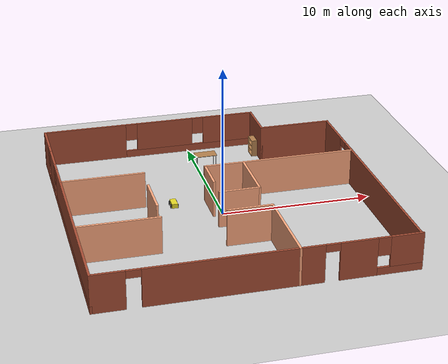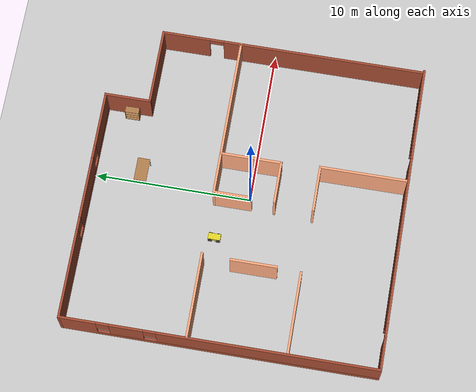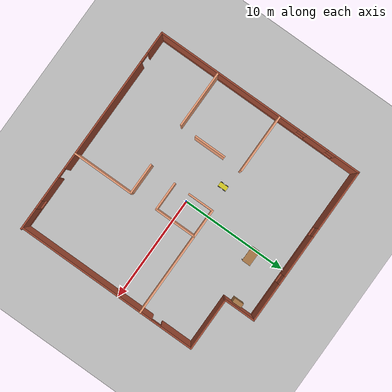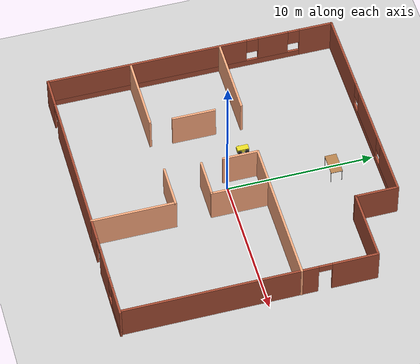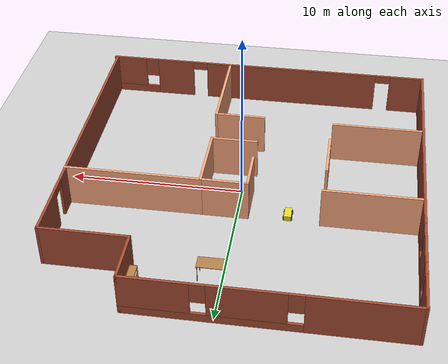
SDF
<sdf version="1.6">
 <world name="default">
  <model name="ground_plane">
   <static>1</static>
   <link name="link">
    <collision name="collision">
     <geometry><plane><normal>0 0 1</normal><size>100 100</size></plane></geometry>
     <surface><friction><ode><mu>100</mu><mu2>50</mu2></ode></friction></surface>
    </collision>
    <visual name="visual">
     <cast_shadows>0</cast_shadows>
     <geometry><plane><normal>0 0 1</normal><size>100 100</size></plane></geometry>
     <material>
      <script><uri>file://media/materials/scripts/gazebo.material</uri><name>Gazebo/Grey</name></script>
     </material>
    </visual>
   </link>
  </model>
  <model name="Workshop_Office">
   <pose>-0.23673 0.237179 0 0 -0 0</pose>
   <link name="Wall_2">
    <pose>-9.90477 0.002703 0 0 0 -1.5708</pose>
    <visual name="Wall_2_Visual_0">
     <pose>-8.81158 0 1.25 0 -0 0</pose>
     <geometry><box><size>2.37684 0.15 2.5</size></box></geometry>
     <material>
      <script><uri>file://media/materials/scripts/gazebo.material</uri><name>Gazebo/Bricks</name></script>
      <ambient>1 1 1 1</ambient>
     </material>
     <meta><layer>0</layer></meta>
    </visual>
    <collision name="Wall_2_Collision_0">
     <geometry><box><size>2.37684 0.15 2.5</size></box></geometry>
     <pose>-8.81158 0 1.25 0 -0 0</pose>
    </collision>
    <visual name="Wall_2_Visual_1">
     <pose>1.18842 0 0.25 0 -0 0</pose>
     <geometry><box><size>17.6232 0.15 0.5</size></box></geometry>
     <material>
      <script><uri>file://media/materials/scripts/gazebo.material</uri><name>Gazebo/Bricks</name></script>
      <ambient>1 1 1 1</ambient>
     </material>
     <meta><layer>0</layer></meta>
    </visual>
    <collision name="Wall_2_Collision_1">
     <geometry><box><size>17.6232 0.15 0.5</size></box></geometry>
     <pose>1.18842 0 0.25 0 -0 0</pose>
    </collision>
    <visual name="Wall_2_Visual_2">
     <pose>-5.76229 0 1.5 0 -0 0</pose>
     <geometry><box><size>2.12174 0.15 2</size></box></geometry>
     <material>
      <script><uri>file://media/materials/scripts/gazebo.material</uri><name>Gazebo/Bricks</name></script>
      <ambient>1 1 1 1</ambient>
     </material>
     <meta><layer>0</layer></meta>
    </visual>
    <collision name="Wall_2_Collision_2">
     <geometry><box><size>2.12174 0.15 2</size></box></geometry>
     <pose>-5.76229 0 1.5 0 -0 0</pose>
    </collision>
    <visual name="Wall_2_Visual_3">
     <pose>3.04929 0 1.5 0 -0 0</pose>
     <geometry><box><size>13.9014 0.15 2</size></box></geometry>
     <material>
      <script><uri>file://media/materials/scripts/gazebo.material</uri><name>Gazebo/Bricks</name></script>
      <ambient>1 1 1 1</ambient>
     </material>
     <meta><layer>0</layer></meta>
    </visual>
    <collision name="Wall_2_Collision_3">
     <geometry><box><size>13.9014 0.15 2</size></box></geometry>
     <pose>3.04929 0 1.5 0 -0 0</pose>
    </collision>
    <visual name="Wall_2_Visual_4">
     <pose>-7.22316 0 1.9 0 -0 0</pose>
     <geometry><box><size>0.8 0.15 1.2</size></box></geometry>
     <material>
      <script><uri>file://media/materials/scripts/gazebo.material</uri><name>Gazebo/Bricks</name></script>
      <ambient>1 1 1 1</ambient>
     </material>
     <meta><layer>0</layer></meta>
    </visual>
    <collision name="Wall_2_Collision_4">
     <geometry><box><size>0.8 0.15 1.2</size></box></geometry>
     <pose>-7.22316 0 1.9 0 -0 0</pose>
    </collision>
    <visual name="Wall_2_Visual_5">
     <pose>-4.30143 0 1.9 0 -0 0</pose>
     <geometry><box><size>0.8 0.15 1.2</size></box></geometry>
     <material>
      <script><uri>file://media/materials/scripts/gazebo.material</uri><name>Gazebo/Bricks</name></script>
      <ambient>1 1 1 1</ambient>
     </material>
     <meta><layer>0</layer></meta>
    </visual>
    <collision name="Wall_2_Collision_5">
     <geometry><box><size>0.8 0.15 1.2</size></box></geometry>
     <pose>-4.30143 0 1.9 0 -0 0</pose>
    </collision>
   </link>
   <link name="Wall_3">
    <pose>0 -9.9223 0 0 -0 0</pose>
    <visual name="Wall_3_Visual_0">
     <pose>-8.93023 0 1.25 0 -0 0</pose>
     <geometry><box><size>2.09908 0.15 2.5</size></box></geometry>
     <material>
      <script><uri>file://media/materials/scripts/gazebo.material</uri><name>Gazebo/Bricks</name></script>
      <ambient>1 1 1 1</ambient>
     </material>
     <meta><layer>0</layer></meta>
    </visual>
    <collision name="Wall_3_Collision_0">
     <geometry><box><size>2.09908 0.15 2.5</size></box></geometry>
     <pose>-8.93023 0 1.25 0 -0 0</pose>
    </collision>
    <visual name="Wall_3_Visual_1">
     <pose>-1.56113 0 1.25 0 -0 0</pose>
     <geometry><box><size>10.8391 0.15 2.5</size></box></geometry>
     <material>
      <script><uri>file://media/materials/scripts/gazebo.material</uri><name>Gazebo/Bricks</name></script>
      <ambient>1 1 1 1</ambient>
     </material>
     <meta><layer>0</layer></meta>
    </visual>
    <collision name="Wall_3_Collision_1">
     <geometry><box><size>10.8391 0.15 2.5</size></box></geometry>
     <pose>-1.56113 0 1.25 0 -0 0</pose>
    </collision>
    <visual name="Wall_3_Visual_2">
     <pose>5.92474 0 1.25 0 -0 0</pose>
     <geometry><box><size>2.33261 0.15 2.5</size></box></geometry>
     <material>
      <script><uri>file://media/materials/scripts/gazebo.material</uri><name>Gazebo/Bricks</name></script>
      <ambient>1 1 1 1</ambient>
     </material>
     <meta><layer>0</layer></meta>
    </visual>
    <collision name="Wall_3_Collision_2">
     <geometry><box><size>2.33261 0.15 2.5</size></box></geometry>
     <pose>5.92474 0 1.25 0 -0 0</pose>
    </collision>
    <visual name="Wall_3_Visual_3">
     <pose>8.53541 0 0.25 0 -0 0</pose>
     <geometry><box><size>2.88873 0.15 0.5</size></box></geometry>
     <material>
      <script><uri>file://media/materials/scripts/gazebo.material</uri><name>Gazebo/Bricks</name></script>
      <ambient>1 1 1 1</ambient>
     </material>
     <meta><layer>0</layer></meta>
    </visual>
    <collision name="Wall_3_Collision_3">
     <geometry><box><size>2.88873 0.15 0.5</size></box></geometry>
     <pose>8.53541 0 0.25 0 -0 0</pose>
    </collision>
    <visual name="Wall_3_Visual_4">
     <pose>8.93541 0 1.5 0 -0 0</pose>
     <geometry><box><size>2.08873 0.15 2</size></box></geometry>
     <material>
      <script><uri>file://media/materials/scripts/gazebo.material</uri><name>Gazebo/Bricks</name></script>
      <ambient>1 1 1 1</ambient>
     </material>
     <meta><layer>0</layer></meta>
    </visual>
    <collision name="Wall_3_Collision_4">
     <geometry><box><size>2.08873 0.15 2</size></box></geometry>
     <pose>8.93541 0 1.5 0 -0 0</pose>
    </collision>
    <visual name="Wall_3_Visual_5">
     <pose>7.49104 0 1.9 0 -0 0</pose>
     <geometry><box><size>0.8 0.15 1.2</size></box></geometry>
     <material>
      <script><uri>file://media/materials/scripts/gazebo.material</uri><name>Gazebo/Bricks</name></script>
      <ambient>1 1 1 1</ambient>
     </material>
     <meta><layer>0</layer></meta>
    </visual>
    <collision name="Wall_3_Collision_5">
     <geometry><box><size>0.8 0.15 1.2</size></box></geometry>
     <pose>7.49104 0 1.9 0 -0 0</pose>
    </collision>
    <visual name="Wall_3_Visual_6">
     <pose>-7.4307 0 2.25 0 -0 0</pose>
     <geometry><box><size>0.9 0.15 0.5</size></box></geometry>
     <material>
      <script><uri>file://media/materials/scripts/gazebo.material</uri><name>Gazebo/Bricks</name></script>
      <ambient>1 1 1 1</ambient>
     </material>
     <meta><layer>0</layer></meta>
    </visual>
    <collision name="Wall_3_Collision_6">
     <geometry><box><size>0.9 0.15 0.5</size></box></geometry>
     <pose>-7.4307 0 2.25 0 -0 0</pose>
    </collision>
    <visual name="Wall_3_Visual_7">
     <pose>4.30844 0 2.25 0 -0 0</pose>
     <geometry><box><size>0.9 0.15 0.5</size></box></geometry>
     <material>
      <script><uri>file://media/materials/scripts/gazebo.material</uri><name>Gazebo/Bricks</name></script>
      <ambient>1 1 1 1</ambient>
     </material>
     <meta><layer>0</layer></meta>
    </visual>
    <collision name="Wall_3_Collision_7">
     <geometry><box><size>0.9 0.15 0.5</size></box></geometry>
     <pose>4.30844 0 2.25 0 -0 0</pose>
    </collision>
   </link>
   <link name="Wall_35">
    <collision name="Wall_35_Collision">
     <geometry><box><size>5.25 0.15 2.5</size></box></geometry>
     <pose>0 0 1.25 0 -0 0</pose>
    </collision>
    <visual name="Wall_35_Visual">
     <pose>0 0 1.25 0 -0 0</pose>
     <geometry><box><size>5.25 0.15 2.5</size></box></geometry>
     <material>
      <script><uri>file://media/materials/scripts/gazebo.material</uri><name>Gazebo/Grey</name></script>
      <ambient>1 0.666667 0.498039 1</ambient>
     </material>
     <meta><layer>0</layer></meta>
    </visual>
    <pose>-7.22637 -4.21655 0 0 -0 0</pose>
   </link>
   <link name="Wall_38">
    <collision name="Wall_38_Collision">
     <geometry><box><size>5.75 0.15 2.5</size></box></geometry>
     <pose>0 0 1.25 0 -0 0</pose>
    </collision>
    <visual name="Wall_38_Visual">
     <pose>0 0 1.25 0 -0 0</pose>
     <geometry><box><size>5.75 0.15 2.5</size></box></geometry>
     <material>
      <script><uri>file://media/materials/scripts/gazebo.material</uri><name>Gazebo/Grey</name></script>
      <ambient>1 0.666667 0.498039 1</ambient>
     </material>
     <meta><layer>0</layer></meta>
    </visual>
    <pose>2.34244 -7.1277 0 0 0 -1.5708</pose>
   </link>
   <link name="Wall_40">
    <collision name="Wall_40_Collision">
     <geometry><box><size>2.75 0.15 2.5</size></box></geometry>
     <pose>0 0 1.25 0 -0 0</pose>
    </collision>
    <visual name="Wall_40_Visual">
     <pose>0 0 1.25 0 -0 0</pose>
     <geometry><box><size>2.75 0.15 2.5</size></box></geometry>
     <material>
      <script><uri>file://media/materials/scripts/gazebo.material</uri><name>Gazebo/Grey</name></script>
      <ambient>1 0.666667 0.498039 1</ambient>
     </material>
     <meta><layer>0</layer></meta>
    </visual>
    <pose>0.914936 -1.85738 0 0 -0 0</pose>
   </link>
   <link name="Wall_41">
    <collision name="Wall_41_Collision">
     <geometry><box><size>4 0.15 2.5</size></box></geometry>
     <pose>0 0 1.25 0 -0 0</pose>
    </collision>
    <visual name="Wall_41_Visual">
     <pose>0 0 1.25 0 -0 0</pose>
     <geometry><box><size>4 0.15 2.5</size></box></geometry>
     <material>
      <script><uri>file://media/materials/scripts/gazebo.material</uri><name>Gazebo/Grey</name></script>
      <ambient>1 0.666667 0.498039 1</ambient>
     </material>
     <meta><layer>0</layer></meta>
    </visual>
    <pose>2.21494 0.067617 0 0 -0 1.5708</pose>
   </link>
   <link name="Wall_48">
    <collision name="Wall_48_Collision">
     <geometry><box><size>7.75 0.15 2.5</size></box></geometry>
     <pose>0 0 1.25 0 -0 0</pose>
    </collision>
    <visual name="Wall_48_Visual">
     <pose>0 0 1.25 0 -0 0</pose>
     <geometry><box><size>7.75 0.15 2.5</size></box></geometry>
     <material>
      <script><uri>file://media/materials/scripts/gazebo.material</uri><name>Gazebo/Grey</name></script>
      <ambient>1 0.666667 0.498039 1</ambient>
     </material>
     <meta><layer>0</layer></meta>
    </visual>
    <pose>6.01494 1.99262 0 0 -0 0</pose>
   </link>
   <link name="Wall_5">
    <pose>-2.47977 9.9277 0 0 -0 0</pose>
    <visual name="Wall_5_Visual_0">
     <pose>-4.62546 0 1.25 0 -0 0</pose>
     <geometry><box><size>5.74908 0.15 2.5</size></box></geometry>
     <material>
      <script><uri>file://media/materials/scripts/gazebo.material</uri><name>Gazebo/Bricks</name></script>
      <ambient>1 1 1 1</ambient>
     </material>
     <meta><layer>0</layer></meta>
    </visual>
    <collision name="Wall_5_Collision_0">
     <geometry><box><size>5.74908 0.15 2.5</size></box></geometry>
     <pose>-4.62546 0 1.25 0 -0 0</pose>
    </collision>
    <visual name="Wall_5_Visual_1">
     <pose>2.87454 0 0.25 0 -0 0</pose>
     <geometry><box><size>9.25092 0.15 0.5</size></box></geometry>
     <material>
      <script><uri>file://media/materials/scripts/gazebo.material</uri><name>Gazebo/Bricks</name></script>
      <ambient>1 1 1 1</ambient>
     </material>
     <meta><layer>0</layer></meta>
    </visual>
    <collision name="Wall_5_Collision_1">
     <geometry><box><size>9.25092 0.15 0.5</size></box></geometry>
     <pose>2.87454 0 0.25 0 -0 0</pose>
    </collision>
    <visual name="Wall_5_Visual_2">
     <pose>1.04908 0 1.5 0 -0 0</pose>
     <geometry><box><size>4 0.15 2</size></box></geometry>
     <material>
      <script><uri>file://media/materials/scripts/gazebo.material</uri><name>Gazebo/Bricks</name></script>
      <ambient>1 1 1 1</ambient>
     </material>
     <meta><layer>0</layer></meta>
    </visual>
    <collision name="Wall_5_Collision_2">
     <geometry><box><size>4 0.15 2</size></box></geometry>
     <pose>1.04908 0 1.5 0 -0 0</pose>
    </collision>
    <visual name="Wall_5_Visual_3">
     <pose>5.67454 0 1.5 0 -0 0</pose>
     <geometry><box><size>3.65092 0.15 2</size></box></geometry>
     <material>
      <script><uri>file://media/materials/scripts/gazebo.material</uri><name>Gazebo/Bricks</name></script>
      <ambient>1 1 1 1</ambient>
     </material>
     <meta><layer>0</layer></meta>
    </visual>
    <collision name="Wall_5_Collision_3">
     <geometry><box><size>3.65092 0.15 2</size></box></geometry>
     <pose>5.67454 0 1.5 0 -0 0</pose>
    </collision>
    <visual name="Wall_5_Visual_4">
     <pose>-1.35092 0 1.9 0 -0 0</pose>
     <geometry><box><size>0.8 0.15 1.2</size></box></geometry>
     <material>
      <script><uri>file://media/materials/scripts/gazebo.material</uri><name>Gazebo/Bricks</name></script>
      <ambient>1 1 1 1</ambient>
     </material>
     <meta><layer>0</layer></meta>
    </visual>
    <collision name="Wall_5_Collision_4">
     <geometry><box><size>0.8 0.15 1.2</size></box></geometry>
     <pose>-1.35092 0 1.9 0 -0 0</pose>
    </collision>
    <visual name="Wall_5_Visual_5">
     <pose>3.44908 0 1.9 0 -0 0</pose>
     <geometry><box><size>0.8 0.15 1.2</size></box></geometry>
     <material>
      <script><uri>file://media/materials/scripts/gazebo.material</uri><name>Gazebo/Bricks</name></script>
      <ambient>1 1 1 1</ambient>
     </material>
     <meta><layer>0</layer></meta>
    </visual>
    <collision name="Wall_5_Collision_5">
     <geometry><box><size>0.8 0.15 1.2</size></box></geometry>
     <pose>3.44908 0 1.9 0 -0 0</pose>
    </collision>
   </link>
   <link name="Wall_50">
    <collision name="Wall_50_Collision">
     <geometry><box><size>5.5 0.15 2.5</size></box></geometry>
     <pose>0 0 1.25 0 -0 0</pose>
    </collision>
    <visual name="Wall_50_Visual">
     <pose>0 0 1.25 0 -0 0</pose>
     <geometry><box><size>5.5 0.15 2.5</size></box></geometry>
     <material>
      <script><uri>file://media/materials/scripts/gazebo.material</uri><name>Gazebo/Grey</name></script>
      <ambient>1 0.666667 0.498039 1</ambient>
     </material>
     <meta><layer>0</layer></meta>
    </visual>
    <pose>-7.15569 2.00847 0 0 -0 0</pose>
   </link>
   <link name="Wall_52">
    <collision name="Wall_52_Collision">
     <geometry><box><size>3 0.15 2.5</size></box></geometry>
     <pose>0 0 1.25 0 -0 0</pose>
    </collision>
    <visual name="Wall_52_Visual">
     <pose>0 0 1.25 0 -0 0</pose>
     <geometry><box><size>3 0.15 2.5</size></box></geometry>
     <material>
      <script><uri>file://media/materials/scripts/gazebo.material</uri><name>Gazebo/Grey</name></script>
      <ambient>1 0.666667 0.498039 1</ambient>
     </material>
     <meta><layer>0</layer></meta>
    </visual>
    <pose>-4.56113 -1.24261 0 0 0 -1.5708</pose>
   </link>
   <link name="Wall_54">
    <collision name="Wall_54_Collision">
     <geometry><box><size>2.75 0.15 2.5</size></box></geometry>
     <pose>0 0 1.25 0 -0 0</pose>
    </collision>
    <visual name="Wall_54_Visual">
     <pose>0 0 1.25 0 -0 0</pose>
     <geometry><box><size>2.75 0.15 2.5</size></box></geometry>
     <material>
      <script><uri>file://media/materials/scripts/gazebo.material</uri><name>Gazebo/Grey</name></script>
      <ambient>1 0.666667 0.498039 1</ambient>
     </material>
     <meta><layer>0</layer></meta>
    </visual>
    <pose>0.914936 1.99262 0 0 -0 3.14159</pose>
   </link>
   <link name="Wall_55">
    <collision name="Wall_55_Collision">
     <geometry><box><size>2.5 0.15 2.5</size></box></geometry>
     <pose>0 0 1.25 0 -0 0</pose>
    </collision>
    <visual name="Wall_55_Visual">
     <pose>0 0 1.25 0 -0 0</pose>
     <geometry><box><size>2.5 0.15 2.5</size></box></geometry>
     <material>
      <script><uri>file://media/materials/scripts/gazebo.material</uri><name>Gazebo/Grey</name></script>
      <ambient>1 0.666667 0.498039 1</ambient>
     </material>
     <meta><layer>0</layer></meta>
    </visual>
    <pose>-0.385064 0.817617 0 0 0 -1.5708</pose>
   </link>
   <link name="Wall_57">
    <collision name="Wall_57_Collision">
     <geometry><box><size>3 0.15 2.5</size></box></geometry>
     <pose>0 0 1.25 0 -0 0</pose>
    </collision>
    <visual name="Wall_57_Visual">
     <pose>0 0 1.25 0 -0 0</pose>
     <geometry><box><size>3 0.15 2.5</size></box></geometry>
     <material>
      <script><uri>file://media/materials/scripts/gazebo.material</uri><name>Gazebo/Grey</name></script>
      <ambient>1 0.666667 0.498039 1</ambient>
     </material>
     <meta><layer>0</layer></meta>
    </visual>
    <pose>0.917441 -4.3277 0 0 -0 3.14159</pose>
   </link>
   <link name="Wall_7">
    <collision name="Wall_7_Collision">
     <geometry><box><size>3 0.15 2.5</size></box></geometry>
     <pose>0 0 1.25 0 -0 0</pose>
    </collision>
    <visual name="Wall_7_Visual">
     <pose>0 0 1.25 0 -0 0</pose>
     <geometry><box><size>3 0.15 2.5</size></box></geometry>
     <material>
      <script><uri>file://media/materials/scripts/gazebo.material</uri><name>Gazebo/Bricks</name></script>
      <ambient>1 1 1 1</ambient>
     </material>
     <meta><layer>0</layer></meta>
    </visual>
    <pose>4.94523 8.5027 0 0 0 -1.5708</pose>
   </link>
   <link name="Wall_8">
    <collision name="Wall_8_Collision">
     <geometry><box><size>5 0.15 2.5</size></box></geometry>
     <pose>0 0 1.25 0 -0 0</pose>
    </collision>
    <visual name="Wall_8_Visual">
     <pose>0 0 1.25 0 -0 0</pose>
     <geometry><box><size>5 0.15 2.5</size></box></geometry>
     <material>
      <script><uri>file://media/materials/scripts/gazebo.material</uri><name>Gazebo/Bricks</name></script>
      <ambient>1 1 1 1</ambient>
     </material>
     <meta><layer>0</layer></meta>
    </visual>
    <pose>7.37023 7.0777 0 0 -0 0</pose>
   </link>
   <link name="Wall_9">
    <pose>9.79523 -1.3473 0 0 0 -1.5708</pose>
    <visual name="Wall_9_Visual_0">
     <pose>-6.9355 0 1.25 0 -0 0</pose>
     <geometry><box><size>3.12901 0.15 2.5</size></box></geometry>
     <material>
      <script><uri>file://media/materials/scripts/gazebo.material</uri><name>Gazebo/Bricks</name></script>
      <ambient>1 1 1 1</ambient>
     </material>
     <meta><layer>0</layer></meta>
    </visual>
    <collision name="Wall_9_Collision_0">
     <geometry><box><size>3.12901 0.15 2.5</size></box></geometry>
     <pose>-6.9355 0 1.25 0 -0 0</pose>
    </collision>
    <visual name="Wall_9_Visual_1">
     <pose>2.01451 0 1.25 0 -0 0</pose>
     <geometry><box><size>12.971 0.15 2.5</size></box></geometry>
     <material>
      <script><uri>file://media/materials/scripts/gazebo.material</uri><name>Gazebo/Bricks</name></script>
      <ambient>1 1 1 1</ambient>
     </material>
     <meta><layer>0</layer></meta>
    </visual>
    <collision name="Wall_9_Collision_1">
     <geometry><box><size>12.971 0.15 2.5</size></box></geometry>
     <pose>2.01451 0 1.25 0 -0 0</pose>
    </collision>
    <visual name="Wall_9_Visual_2">
     <pose>-4.92099 0 2.25 0 -0 0</pose>
     <geometry><box><size>0.9 0.15 0.5</size></box></geometry>
     <material>
      <script><uri>file://media/materials/scripts/gazebo.material</uri><name>Gazebo/Bricks</name></script>
      <ambient>1 1 1 1</ambient>
     </material>
     <meta><layer>0</layer></meta>
    </visual>
    <collision name="Wall_9_Collision_2">
     <geometry><box><size>0.9 0.15 0.5</size></box></geometry>
     <pose>-4.92099 0 2.25 0 -0 0</pose>
    </collision>
   </link>
   <static>1</static>
  </model>
  <model name="bookshelf">
   <static>1</static>
   <link name="link">
    <inertial><mass>1</mass></inertial>
    <collision name="back">
     <pose>0 0.005 0.6 0 -0 0</pose>
     <geometry><box><size>0.9 0.01 1.2</size></box></geometry>
    </collision>
    <visual name="visual1">
     <pose>0 0.005 0.6 0 -0 0</pose>
     <geometry><box><size>0.9 0.01 1.2</size></box></geometry>
     <material>
      <script><uri>file://media/materials/scripts/gazebo.material</uri><name>Gazebo/Wood</name></script>
     </material>
    </visual>
    <collision name="left_side">
     <pose>0.45 -0.195 0.6 0 -0 0</pose>
     <geometry><box><size>0.02 0.4 1.2</size></box></geometry>
    </collision>
    <visual name="visual2">
     <pose>0.45 -0.195 0.6 0 -0 0</pose>
     <geometry><box><size>0.02 0.4 1.2</size></box></geometry>
     <material>
      <script><uri>file://media/materials/scripts/gazebo.material</uri><name>Gazebo/Wood</name></script>
     </material>
    </visual>
    <collision name="right_side">
     <pose>-0.45 -0.195 0.6 0 -0 0</pose>
     <geometry><box><size>0.02 0.4 1.2</size></box></geometry>
    </collision>
    <visual name="visual3">
     <pose>-0.45 -0.195 0.6 0 -0 0</pose>
     <geometry><box><size>0.02 0.4 1.2</size></box></geometry>
     <material>
      <script><uri>file://media/materials/scripts/gazebo.material</uri><name>Gazebo/Wood</name></script>
     </material>
    </visual>
    <collision name="bottom">
     <pose>0 -0.195 0.03 0 -0 0</pose>
     <geometry><box><size>0.88 0.4 0.06</size></box></geometry>
    </collision>
    <visual name="visual4">
     <pose>0 -0.195 0.03 0 -0 0</pose>
     <geometry><box><size>0.88 0.4 0.06</size></box></geometry>
     <material>
      <script><uri>file://media/materials/scripts/gazebo.material</uri><name>Gazebo/Wood</name></script>
     </material>
    </visual>
    <collision name="top">
     <pose>0 -0.195 1.19 0 -0 0</pose>
     <geometry><box><size>0.88 0.4 0.02</size></box></geometry>
    </collision>
    <visual name="visual5">
     <pose>0 -0.195 1.19 0 -0 0</pose>
     <geometry><box><size>0.88 0.4 0.02</size></box></geometry>
     <material>
      <script><uri>file://media/materials/scripts/gazebo.material</uri><name>Gazebo/Wood</name></script>
     </material>
    </visual>
    <collision name="low_shelf">
     <pose>0 -0.195 0.43 0 -0 0</pose>
     <geometry><box><size>0.88 0.4 0.02</size></box></geometry>
    </collision>
    <visual name="visual6">
     <pose>0 -0.195 0.43 0 -0 0</pose>
     <geometry><box><size>0.88 0.4 0.02</size></box></geometry>
     <material>
      <script><uri>file://media/materials/scripts/gazebo.material</uri><name>Gazebo/Wood</name></script>
     </material>
    </visual>
    <collision name="high_shelf">
     <pose>0 -0.195 0.8 0 -0 0</pose>
     <geometry><box><size>0.88 0.4 0.02</size></box></geometry>
    </collision>
    <visual name="visual7">
     <pose>0 -0.195 0.8 0 -0 0</pose>
     <geometry><box><size>0.88 0.4 0.02</size></box></geometry>
     <material>
      <script><uri>file://media/materials/scripts/gazebo.material</uri><name>Gazebo/Wood</name></script>
     </material>
    </visual>
   </link>
   <pose>4.60553 8.4766 0 0 0 -1.56529</pose>
  </model>
  <model name="table_3">
   <static>1</static>
   <link name="link">
    <collision name="surface">
     <pose>0 0 1 0 -0 0</pose>
     <geometry><box><size>1.5 0.8 0.03</size></box></geometry>
     <surface><friction><ode><mu>0.6</mu><mu2>0.6</mu2></ode></friction></surface>
    </collision>
    <visual name="visual1">
     <pose>0 0 1 0 -0 0</pose>
     <geometry><box><size>1.5 0.8 0.03</size></box></geometry>
     <material>
      <script><uri>file://media/materials/scripts/gazebo.material</uri><name>Gazebo/Wood</name></script>
     </material>
    </visual>
    <collision name="front_left_leg">
     <pose>0.68 0.38 0.5 0 -0 0</pose>
     <geometry><cylinder><radius>0.02</radius><length>1</length></cylinder></geometry>
    </collision>
    <visual name="front_left_leg">
     <pose>0.68 0.38 0.5 0 -0 0</pose>
     <geometry><cylinder><radius>0.02</radius><length>1</length></cylinder></geometry>
     <material>
      <script><uri>file://media/materials/scripts/gazebo.material</uri><name>Gazebo/Grey</name></script>
     </material>
    </visual>
    <collision name="front_right_leg">
     <pose>0.68 -0.38 0.5 0 -0 0</pose>
     <geometry><cylinder><radius>0.02</radius><length>1</length></cylinder></geometry>
    </collision>
    <visual name="front_right_leg">
     <pose>0.68 -0.38 0.5 0 -0 0</pose>
     <geometry><cylinder><radius>0.02</radius><length>1</length></cylinder></geometry>
     <material>
      <script><uri>file://media/materials/scripts/gazebo.material</uri><name>Gazebo/Grey</name></script>
     </material>
    </visual>
    <collision name="back_right_leg">
     <pose>-0.68 -0.38 0.5 0 -0 0</pose>
     <geometry><cylinder><radius>0.02</radius><length>1</length></cylinder></geometry>
    </collision>
    <visual name="back_right_leg">
     <pose>-0.68 -0.38 0.5 0 -0 0</pose>
     <geometry><cylinder><radius>0.02</radius><length>1</length></cylinder></geometry>
     <material>
      <script><uri>file://media/materials/scripts/gazebo.material</uri><name>Gazebo/Grey</name></script>
     </material>
    </visual>
    <collision name="back_left_leg">
     <pose>-0.68 0.38 0.5 0 -0 0</pose>
     <geometry><cylinder><radius>0.02</radius><length>1</length></cylinder></geometry>
    </collision>
    <visual name="back_left_leg">
     <pose>-0.68 0.38 0.5 0 -0 0</pose>
     <geometry><cylinder><radius>0.02</radius><length>1</length></cylinder></geometry>
     <material>
      <script><uri>file://media/materials/scripts/gazebo.material</uri><name>Gazebo/Grey</name></script>
     </material>
    </visual>
   </link>
   <pose>0.579247 7.117 0 0 -0 0</pose>
  </model>
  <model name="mobile_robot">
   <link name="wheel_0">
    <pose>-0.236758 -0.25 5e-06 0 1.56974 0</pose>
    <inertial>
     <mass>0.15</mass>
     <inertia><ixx>0.145833</ixx><ixy>0</ixy><ixz>0</ixz><iyy>0.145833</iyy><iyz>0</iyz><izz>0.125</izz></inertia>
    </inertial>
    <visual name="visual">
     <geometry><cylinder><radius>0.15</radius><length>0.05</length></cylinder></geometry>
     <material>
      <lighting>1</lighting>
      <script><uri>file://media/materials/scripts/gazebo.material</uri><name>Gazebo/Black</name></script>
      <shader type="pixel"><normal_map>__default__</normal_map></shader>
      <ambient>0.3 0.3 0.3 1</ambient>
      <diffuse>0.7 0.7 0.7 1</diffuse>
      <specular>0.01 0.01 0.01 1</specular>
      <emissive>0 0 0 1</emissive>
     </material>
    </visual>
    <collision name="collision">
     <geometry><cylinder><radius>0.15</radius><length>0.05</length></cylinder></geometry>
     <surface>
      <friction>
       <ode><mu>1</mu><mu2>1</mu2><fdir1>0 0 0</fdir1><slip1>0</slip1><slip2>0</slip2></ode>
       <torsional>
        <coefficient>1</coefficient>
        <patch_radius>0</patch_radius>
        <surface_radius>0</surface_radius>
        <use_patch_radius>1</use_patch_radius>
        <ode><slip>0</slip></ode>
       </torsional>
      </friction>
      <bounce><restitution_coefficient>0</restitution_coefficient><threshold>1e+06</threshold></bounce>
      <contact>
       <collide_without_contact>0</collide_without_contact>
       <collide_without_contact_bitmask>1</collide_without_contact_bitmask>
       <collide_bitmask>1</collide_bitmask>
       <ode>
        <soft_cfm>0</soft_cfm>
        <soft_erp>0.2</soft_erp>
        <kp>1e+13</kp>
        <kd>1</kd>
        <max_vel>0.01</max_vel>
        <min_depth>0</min_depth>
       </ode>
       <bullet>
        <split_impulse>1</split_impulse>
        <split_impulse_penetration_threshold>-0.01</split_impulse_penetration_threshold>
        <soft_cfm>0</soft_cfm>
        <soft_erp>0.2</soft_erp>
        <kp>1e+13</kp>
        <kd>1</kd>
       </bullet>
      </contact>
     </surface>
    </collision>
   </link>
   <link name="body">
    <pose>6e-06 0 0.064159 0 0.0001 0</pose>
    <inertial>
     <mass>1</mass>
     <inertia>
      <ixx>0.166667</ixx>
      <ixy>0</ixy>
      <ixz>0</ixz>
      <iyy>0.166667</iyy>
      <iyz>0</iyz>
      <izz>0.166667</izz>
     </inertia>
    </inertial>
    <visual name="visual">
     <geometry><box><size>0.4 0.8 0.3</size></box></geometry>
     <material>
      <lighting>1</lighting>
      <script><uri>file://media/materials/scripts/gazebo.material</uri><name>Gazebo/DarkYellow</name></script>
      <shader type="pixel"><normal_map>__default__</normal_map></shader>
      <ambient>0.3 0.3 0.3 1</ambient>
      <diffuse>0.7 0.7 0.7 1</diffuse>
      <specular>0.01 0.01 0.01 1</specular>
      <emissive>0 0 0 1</emissive>
     </material>
    </visual>
    <collision name="collision">
     <geometry><box><size>0.4 0.8 0.3</size></box></geometry>
     <surface>
      <friction>
       <ode><mu>1</mu><mu2>1</mu2><fdir1>0 0 0</fdir1><slip1>0</slip1><slip2>0</slip2></ode>
       <torsional>
        <coefficient>1</coefficient>
        <patch_radius>0</patch_radius>
        <surface_radius>0</surface_radius>
        <use_patch_radius>1</use_patch_radius>
        <ode><slip>0</slip></ode>
       </torsional>
      </friction>
      <bounce><restitution_coefficient>0</restitution_coefficient><threshold>1e+06</threshold></bounce>
      <contact>
       <collide_without_contact>0</collide_without_contact>
       <collide_without_contact_bitmask>1</collide_without_contact_bitmask>
       <collide_bitmask>1</collide_bitmask>
       <ode>
        <soft_cfm>0</soft_cfm>
        <soft_erp>0.2</soft_erp>
        <kp>1e+13</kp>
        <kd>1</kd>
        <max_vel>0.01</max_vel>
        <min_depth>0</min_depth>
       </ode>
       <bullet>
        <split_impulse>1</split_impulse>
        <split_impulse_penetration_threshold>-0.01</split_impulse_penetration_threshold>
        <soft_cfm>0</soft_cfm>
        <soft_erp>0.2</soft_erp>
        <kp>1e+13</kp>
        <kd>1</kd>
       </bullet>
      </contact>
     </surface>
    </collision>
   </link>
   <link name="wheel_1">
    <pose>0.220613 -0.25 -1e-06 0 1.56974 0</pose>
    <inertial>
     <mass>0.15</mass>
     <inertia><ixx>0.145833</ixx><ixy>0</ixy><ixz>0</ixz><iyy>0.145833</iyy><iyz>0</iyz><izz>0.125</izz></inertia>
    </inertial>
    <visual name="visual">
     <geometry><cylinder><radius>0.15</radius><length>0.05</length></cylinder></geometry>
     <material>
      <lighting>1</lighting>
      <script><uri>file://media/materials/scripts/gazebo.material</uri><name>Gazebo/Black</name></script>
      <shader type="pixel"><normal_map>__default__</normal_map></shader>
      <ambient>0.3 0.3 0.3 1</ambient>
      <diffuse>0.7 0.7 0.7 1</diffuse>
      <specular>0.01 0.01 0.01 1</specular>
      <emissive>0 0 0 1</emissive>
     </material>
    </visual>
    <collision name="collision">
     <geometry><cylinder><radius>0.15</radius><length>0.05</length></cylinder></geometry>
     <surface>
      <friction>
       <ode><mu>1</mu><mu2>1</mu2><fdir1>0 0 0</fdir1><slip1>0</slip1><slip2>0</slip2></ode>
       <torsional>
        <coefficient>1</coefficient>
        <patch_radius>0</patch_radius>
        <surface_radius>0</surface_radius>
        <use_patch_radius>1</use_patch_radius>
        <ode><slip>0</slip></ode>
       </torsional>
      </friction>
      <bounce><restitution_coefficient>0</restitution_coefficient><threshold>1e+06</threshold></bounce>
      <contact>
       <collide_without_contact>0</collide_without_contact>
       <collide_without_contact_bitmask>1</collide_without_contact_bitmask>
       <collide_bitmask>1</collide_bitmask>
       <ode>
        <soft_cfm>0</soft_cfm>
        <soft_erp>0.2</soft_erp>
        <kp>1e+13</kp>
        <kd>1</kd>
        <max_vel>0.01</max_vel>
        <min_depth>0</min_depth>
       </ode>
       <bullet>
        <split_impulse>1</split_impulse>
        <split_impulse_penetration_threshold>-0.01</split_impulse_penetration_threshold>
        <soft_cfm>0</soft_cfm>
        <soft_erp>0.2</soft_erp>
        <kp>1e+13</kp>
        <kd>1</kd>
       </bullet>
      </contact>
     </surface>
    </collision>
   </link>
   <link name="wheel_2">
    <pose>-0.232377 0.25 -1e-06 0 1.56974 0</pose>
    <inertial>
     <mass>0.15</mass>
     <inertia><ixx>0.145833</ixx><ixy>0</ixy><ixz>0</ixz><iyy>0.145833</iyy><iyz>0</iyz><izz>0.125</izz></inertia>
    </inertial>
    <visual name="visual">
     <geometry><cylinder><radius>0.15</radius><length>0.05</length></cylinder></geometry>
     <material>
      <lighting>1</lighting>
      <script><uri>file://media/materials/scripts/gazebo.material</uri><name>Gazebo/Black</name></script>
      <shader type="pixel"><normal_map>__default__</normal_map></shader>
      <ambient>0.3 0.3 0.3 1</ambient>
      <diffuse>0.7 0.7 0.7 1</diffuse>
      <specular>0.01 0.01 0.01 1</specular>
      <emissive>0 0 0 1</emissive>
     </material>
    </visual>
    <collision name="collision">
     <geometry><cylinder><radius>0.15</radius><length>0.05</length></cylinder></geometry>
     <surface>
      <friction>
       <ode><mu>1</mu><mu2>1</mu2><fdir1>0 0 0</fdir1><slip1>0</slip1><slip2>0</slip2></ode>
       <torsional>
        <coefficient>1</coefficient>
        <patch_radius>0</patch_radius>
        <surface_radius>0</surface_radius>
        <use_patch_radius>1</use_patch_radius>
        <ode><slip>0</slip></ode>
       </torsional>
      </friction>
      <bounce><restitution_coefficient>0</restitution_coefficient><threshold>1e+06</threshold></bounce>
      <contact>
       <collide_without_contact>0</collide_without_contact>
       <collide_without_contact_bitmask>1</collide_without_contact_bitmask>
       <collide_bitmask>1</collide_bitmask>
       <ode>
        <soft_cfm>0</soft_cfm>
        <soft_erp>0.2</soft_erp>
        <kp>1e+13</kp>
        <kd>1</kd>
        <max_vel>0.01</max_vel>
        <min_depth>0</min_depth>
       </ode>
       <bullet>
        <split_impulse>1</split_impulse>
        <split_impulse_penetration_threshold>-0.01</split_impulse_penetration_threshold>
        <soft_cfm>0</soft_cfm>
        <soft_erp>0.2</soft_erp>
        <kp>1e+13</kp>
        <kd>1</kd>
       </bullet>
      </contact>
     </surface>
    </collision>
   </link>
   <link name="wheel_3">
    <pose>0.22699 0.25 -1e-06 0 1.56974 0</pose>
    <inertial>
     <mass>0.15</mass>
     <inertia><ixx>0.145833</ixx><ixy>0</ixy><ixz>0</ixz><iyy>0.145833</iyy><iyz>0</iyz><izz>0.125</izz></inertia>
    </inertial>
    <visual name="visual">
     <geometry><cylinder><radius>0.15</radius><length>0.05</length></cylinder></geometry>
     <material>
      <lighting>1</lighting>
      <script><uri>file://media/materials/scripts/gazebo.material</uri><name>Gazebo/Black</name></script>
      <shader type="pixel"><normal_map>__default__</normal_map></shader>
      <ambient>0.3 0.3 0.3 1</ambient>
      <diffuse>0.7 0.7 0.7 1</diffuse>
      <specular>0.01 0.01 0.01 1</specular>
      <emissive>0 0 0 1</emissive>
     </material>
    </visual>
    <collision name="collision">
     <geometry><cylinder><radius>0.15</radius><length>0.05</length></cylinder></geometry>
     <surface>
      <friction>
       <ode><mu>1</mu><mu2>1</mu2><fdir1>0 0 0</fdir1><slip1>0</slip1><slip2>0</slip2></ode>
       <torsional>
        <coefficient>1</coefficient>
        <patch_radius>0</patch_radius>
        <surface_radius>0</surface_radius>
        <use_patch_radius>1</use_patch_radius>
        <ode><slip>0</slip></ode>
       </torsional>
      </friction>
      <bounce><restitution_coefficient>0</restitution_coefficient><threshold>1e+06</threshold></bounce>
      <contact>
       <collide_without_contact>0</collide_without_contact>
       <collide_without_contact_bitmask>1</collide_without_contact_bitmask>
       <collide_bitmask>1</collide_bitmask>
       <ode>
        <soft_cfm>0</soft_cfm>
        <soft_erp>0.2</soft_erp>
        <kp>1e+13</kp>
        <kd>1</kd>
        <max_vel>0.01</max_vel>
        <min_depth>0</min_depth>
       </ode>
       <bullet>
        <split_impulse>1</split_impulse>
        <split_impulse_penetration_threshold>-0.01</split_impulse_penetration_threshold>
        <soft_cfm>0</soft_cfm>
        <soft_erp>0.2</soft_erp>
        <kp>1e+13</kp>
        <kd>1</kd>
       </bullet>
      </contact>
     </surface>
    </collision>
   </link>
   <static>0</static>
   <pose>-2.86087 1.83302 0.149741 0 0.001075 0</pose>
  </model>
 </world>
</sdf>
